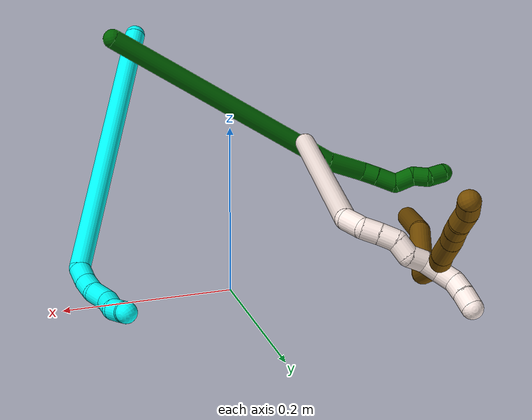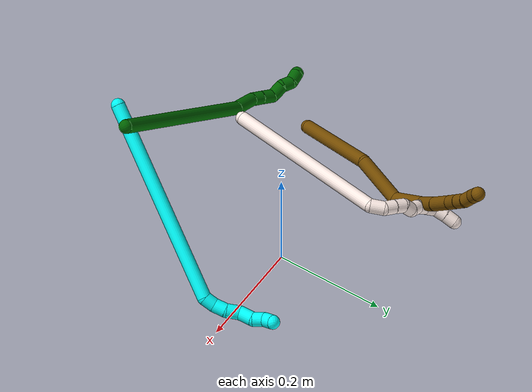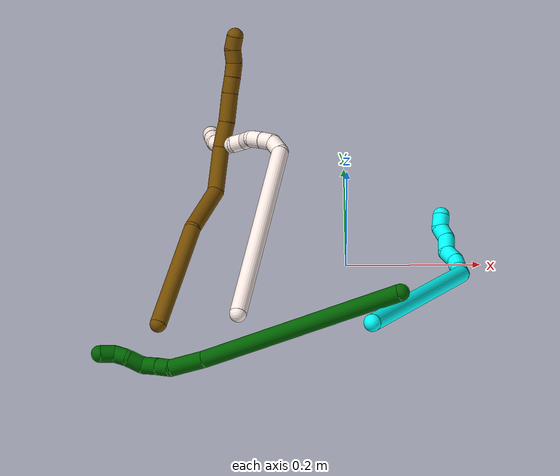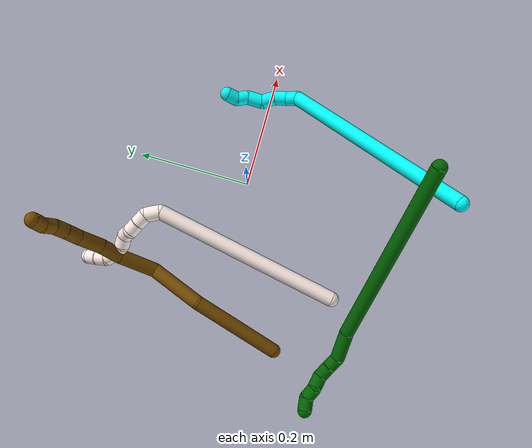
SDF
<sdf version="1.7">
 <world name="default">
  <model name="3">
   <static>0</static>
   <link name="3">
    <collision name="collision-cylinder-e_1_1_4">
     <pose>-0.037067 0.100546 -0.147471 -2.54319 -0.204764 0.643037</pose>
     <geometry><cylinder><radius>0.0125</radius><length>0.364589</length></cylinder></geometry>
     <surface>
      <friction><ode><mu>1.16</mu><mu2>1.16</mu2><slip1>0</slip1><slip2>0</slip2></ode></friction>
      <contact><ode><kp>1e+06</kp><kd>1</kd><max_vel>0</max_vel><min_depth>0.001</min_depth></ode></contact>
     </surface>
    </collision>
    <visual name="visual-cylinder-e_1_1_4">
     <pose>-0.037067 0.100546 -0.147471 -2.54319 -0.204764 0.643037</pose>
     <geometry><cylinder><radius>0.0125</radius><length>0.364589</length></cylinder></geometry>
     <material><ambient>0.003922 1 0.996078 1</ambient></material>
    </visual>
    <collision name="collision-cylinder-e_2_4_5">
     <pose>-0.073236 0.210169 -0.300011 -2.07999 0.086195 -0.146669</pose>
     <geometry><cylinder><radius>0.0125</radius><length>0.020869</length></cylinder></geometry>
     <surface>
      <friction><ode><mu>1.16</mu><mu2>1.16</mu2><slip1>0</slip1><slip2>0</slip2></ode></friction>
      <contact><ode><kp>1e+06</kp><kd>1</kd><max_vel>0</max_vel><min_depth>0.001</min_depth></ode></contact>
     </surface>
    </collision>
    <visual name="visual-cylinder-e_2_4_5">
     <pose>-0.073236 0.210169 -0.300011 -2.07999 0.086195 -0.146669</pose>
     <geometry><cylinder><radius>0.0125</radius><length>0.020869</length></cylinder></geometry>
     <material><ambient>0.003922 1 0.996078 1</ambient></material>
    </visual>
    <collision name="collision-cylinder-e_3_5_6">
     <pose>-0.068043 0.228013 -0.310709 -2.14169 0.390923 -0.695464</pose>
     <geometry><cylinder><radius>0.0125</radius><length>0.022539</length></cylinder></geometry>
     <surface>
      <friction><ode><mu>1.16</mu><mu2>1.16</mu2><slip1>0</slip1><slip2>0</slip2></ode></friction>
      <contact><ode><kp>1e+06</kp><kd>1</kd><max_vel>0</max_vel><min_depth>0.001</min_depth></ode></contact>
     </surface>
    </collision>
    <visual name="visual-cylinder-e_3_5_6">
     <pose>-0.068043 0.228013 -0.310709 -2.14169 0.390923 -0.695464</pose>
     <geometry><cylinder><radius>0.0125</radius><length>0.022539</length></cylinder></geometry>
     <material><ambient>0.003922 1 0.996078 1</ambient></material>
    </visual>
    <collision name="collision-cylinder-e_4_6_7">
     <pose>-0.058561 0.247647 -0.318431 -1.76094 0.438415 -0.526971</pose>
     <geometry><cylinder><radius>0.0125</radius><length>0.024445</length></cylinder></geometry>
     <surface>
      <friction><ode><mu>1.16</mu><mu2>1.16</mu2><slip1>0</slip1><slip2>0</slip2></ode></friction>
      <contact><ode><kp>1e+06</kp><kd>1</kd><max_vel>0</max_vel><min_depth>0.001</min_depth></ode></contact>
     </surface>
    </collision>
    <visual name="visual-cylinder-e_4_6_7">
     <pose>-0.058561 0.247647 -0.318431 -1.76094 0.438415 -0.526971</pose>
     <geometry><cylinder><radius>0.0125</radius><length>0.024445</length></cylinder></geometry>
     <material><ambient>0.003922 1 0.996078 1</ambient></material>
    </visual>
    <collision name="collision-cylinder-e_5_7_8">
     <pose>-0.046172 0.266163 -0.329244 -2.42162 0.555519 -1.29662</pose>
     <geometry><cylinder><radius>0.0125</radius><length>0.027306</length></cylinder></geometry>
     <surface>
      <friction><ode><mu>1.16</mu><mu2>1.16</mu2><slip1>0</slip1><slip2>0</slip2></ode></friction>
      <contact><ode><kp>1e+06</kp><kd>1</kd><max_vel>0</max_vel><min_depth>0.001</min_depth></ode></contact>
     </surface>
    </collision>
    <visual name="visual-cylinder-e_5_7_8">
     <pose>-0.046172 0.266163 -0.329244 -2.42162 0.555519 -1.29662</pose>
     <geometry><cylinder><radius>0.0125</radius><length>0.027306</length></cylinder></geometry>
     <material><ambient>0.003922 1 0.996078 1</ambient></material>
    </visual>
    <collision name="collision-cylinder-e_6_8_9">
     <pose>-0.032066 0.280844 -0.340189 -1.87706 0.75246 -0.989101</pose>
     <geometry><cylinder><radius>0.0125</radius><length>0.020208</length></cylinder></geometry>
     <surface>
      <friction><ode><mu>1.16</mu><mu2>1.16</mu2><slip1>0</slip1><slip2>0</slip2></ode></friction>
      <contact><ode><kp>1e+06</kp><kd>1</kd><max_vel>0</max_vel><min_depth>0.001</min_depth></ode></contact>
     </surface>
    </collision>
    <visual name="visual-cylinder-e_6_8_9">
     <pose>-0.032066 0.280844 -0.340189 -1.87706 0.75246 -0.989101</pose>
     <geometry><cylinder><radius>0.0125</radius><length>0.020208</length></cylinder></geometry>
     <material><ambient>0.003922 1 0.996078 1</ambient></material>
    </visual>
    <collision name="collision-cylinder-e_7_9_2">
     <pose>-0.017849 0.290518 -0.348737 -2.74594 0.817721 -2.27497</pose>
     <geometry><cylinder><radius>0.0125</radius><length>0.020043</length></cylinder></geometry>
     <surface>
      <friction><ode><mu>1.16</mu><mu2>1.16</mu2><slip1>0</slip1><slip2>0</slip2></ode></friction>
      <contact><ode><kp>1e+06</kp><kd>1</kd><max_vel>0</max_vel><min_depth>0.001</min_depth></ode></contact>
     </surface>
    </collision>
    <visual name="visual-cylinder-e_7_9_2">
     <pose>-0.017849 0.290518 -0.348737 -2.74594 0.817721 -2.27497</pose>
     <geometry><cylinder><radius>0.0125</radius><length>0.020043</length></cylinder></geometry>
     <material><ambient>0.003922 1 0.996078 1</ambient></material>
    </visual>
    <collision name="collision-sphere-2">
     <pose>-0.010537 0.29316 -0.355061 0 -0 0</pose>
     <geometry><sphere><radius>0.0125</radius></sphere></geometry>
     <surface>
      <friction><ode><mu>1.16</mu><mu2>1.16</mu2><slip1>0</slip1><slip2>0</slip2></ode></friction>
      <contact><ode><kp>1e+06</kp><kd>1</kd><max_vel>0</max_vel><min_depth>0.001</min_depth></ode></contact>
     </surface>
    </collision>
    <visual name="visual-sphere-2">
     <pose>-0.010537 0.29316 -0.355061 0 -0 0</pose>
     <geometry><sphere><radius>0.0125</radius></sphere></geometry>
     <material><ambient>0.003922 1 0.996078 1</ambient></material>
    </visual>
    <collision name="collision-sphere-9">
     <pose>-0.02516 0.287877 -0.342413 0 -0 0</pose>
     <geometry><sphere><radius>0.0125</radius></sphere></geometry>
     <surface>
      <friction><ode><mu>1.16</mu><mu2>1.16</mu2><slip1>0</slip1><slip2>0</slip2></ode></friction>
      <contact><ode><kp>1e+06</kp><kd>1</kd><max_vel>0</max_vel><min_depth>0.001</min_depth></ode></contact>
     </surface>
    </collision>
    <visual name="visual-sphere-9">
     <pose>-0.02516 0.287877 -0.342413 0 -0 0</pose>
     <geometry><sphere><radius>0.0125</radius></sphere></geometry>
     <material><ambient>0.003922 1 0.996078 1</ambient></material>
    </visual>
    <collision name="collision-sphere-4">
     <pose>-0.074134 0.201092 -0.294943 0 -0 0</pose>
     <geometry><sphere><radius>0.0125</radius></sphere></geometry>
     <surface>
      <friction><ode><mu>1.16</mu><mu2>1.16</mu2><slip1>0</slip1><slip2>0</slip2></ode></friction>
      <contact><ode><kp>1e+06</kp><kd>1</kd><max_vel>0</max_vel><min_depth>0.001</min_depth></ode></contact>
     </surface>
    </collision>
    <visual name="visual-sphere-4">
     <pose>-0.074134 0.201092 -0.294943 0 -0 0</pose>
     <geometry><sphere><radius>0.0125</radius></sphere></geometry>
     <material><ambient>0.003922 1 0.996078 1</ambient></material>
    </visual>
    <collision name="collision-sphere-1">
     <geometry><sphere><radius>0.0125</radius></sphere></geometry>
     <surface>
      <friction><ode><mu>1.16</mu><mu2>1.16</mu2><slip1>0</slip1><slip2>0</slip2></ode></friction>
      <contact><ode><kp>1e+06</kp><kd>1</kd><max_vel>0</max_vel><min_depth>0.001</min_depth></ode></contact>
     </surface>
    </collision>
    <visual name="visual-sphere-1">
     <geometry><sphere><radius>0.0125</radius></sphere></geometry>
     <material><ambient>0.003922 1 0.996078 1</ambient></material>
    </visual>
    <collision name="collision-sphere-8">
     <pose>-0.038971 0.273811 -0.337965 0 -0 0</pose>
     <geometry><sphere><radius>0.0125</radius></sphere></geometry>
     <surface>
      <friction><ode><mu>1.16</mu><mu2>1.16</mu2><slip1>0</slip1><slip2>0</slip2></ode></friction>
      <contact><ode><kp>1e+06</kp><kd>1</kd><max_vel>0</max_vel><min_depth>0.001</min_depth></ode></contact>
     </surface>
    </collision>
    <visual name="visual-sphere-8">
     <pose>-0.038971 0.273811 -0.337965 0 -0 0</pose>
     <geometry><sphere><radius>0.0125</radius></sphere></geometry>
     <material><ambient>0.003922 1 0.996078 1</ambient></material>
    </visual>
    <collision name="collision-sphere-5">
     <pose>-0.072338 0.219246 -0.305079 0 -0 0</pose>
     <geometry><sphere><radius>0.0125</radius></sphere></geometry>
     <surface>
      <friction><ode><mu>1.16</mu><mu2>1.16</mu2><slip1>0</slip1><slip2>0</slip2></ode></friction>
      <contact><ode><kp>1e+06</kp><kd>1</kd><max_vel>0</max_vel><min_depth>0.001</min_depth></ode></contact>
     </surface>
    </collision>
    <visual name="visual-sphere-5">
     <pose>-0.072338 0.219246 -0.305079 0 -0 0</pose>
     <geometry><sphere><radius>0.0125</radius></sphere></geometry>
     <material><ambient>0.003922 1 0.996078 1</ambient></material>
    </visual>
    <collision name="collision-sphere-6">
     <pose>-0.063749 0.23678 -0.316339 0 -0 0</pose>
     <geometry><sphere><radius>0.0125</radius></sphere></geometry>
     <surface>
      <friction><ode><mu>1.16</mu><mu2>1.16</mu2><slip1>0</slip1><slip2>0</slip2></ode></friction>
      <contact><ode><kp>1e+06</kp><kd>1</kd><max_vel>0</max_vel><min_depth>0.001</min_depth></ode></contact>
     </surface>
    </collision>
    <visual name="visual-sphere-6">
     <pose>-0.063749 0.23678 -0.316339 0 -0 0</pose>
     <geometry><sphere><radius>0.0125</radius></sphere></geometry>
     <material><ambient>0.003922 1 0.996078 1</ambient></material>
    </visual>
    <collision name="collision-sphere-7">
     <pose>-0.053372 0.258514 -0.320523 0 -0 0</pose>
     <geometry><sphere><radius>0.0125</radius></sphere></geometry>
     <surface>
      <friction><ode><mu>1.16</mu><mu2>1.16</mu2><slip1>0</slip1><slip2>0</slip2></ode></friction>
      <contact><ode><kp>1e+06</kp><kd>1</kd><max_vel>0</max_vel><min_depth>0.001</min_depth></ode></contact>
     </surface>
    </collision>
    <visual name="visual-sphere-7">
     <pose>-0.053372 0.258514 -0.320523 0 -0 0</pose>
     <geometry><sphere><radius>0.0125</radius></sphere></geometry>
     <material><ambient>0.003922 1 0.996078 1</ambient></material>
    </visual>
    <inertial>
     <pose>-0.040549 0.142006 -0.195339 0 -0 0</pose>
     <mass>0.5</mass>
     <inertia>
      <ixx>0.005553</ixx>
      <ixy>0</ixy>
      <ixz>0</ixz>
      <iyy>-4e-06</iyy>
      <iyz>0</iyz>
      <izz>-0.001452</izz>
     </inertia>
    </inertial>
   </link>
   <pose>0.030467 -0.319119 0.228035 -1.44238 -0.953936 2.15708</pose>
  </model>
  <model name="6">
   <static>0</static>
   <link name="6">
    <collision name="collision-cylinder-e_1_1_4">
     <pose>-0.145665 -0.007945 -0.080229 3.04288 -1.06529 -2.97439</pose>
     <geometry><cylinder><radius>0.0125</radius><length>0.332975</length></cylinder></geometry>
     <surface>
      <friction><ode><mu>1.16</mu><mu2>1.16</mu2><slip1>0</slip1><slip2>0</slip2></ode></friction>
      <contact><ode><kp>1e+06</kp><kd>1</kd><max_vel>0</max_vel><min_depth>0.001</min_depth></ode></contact>
     </surface>
    </collision>
    <visual name="visual-cylinder-e_1_1_4">
     <pose>-0.145665 -0.007945 -0.080229 3.04288 -1.06529 -2.97439</pose>
     <geometry><cylinder><radius>0.0125</radius><length>0.332975</length></cylinder></geometry>
     <material><ambient>0 0.392157 0.003922 1</ambient></material>
    </visual>
    <collision name="collision-cylinder-e_2_4_5">
     <pose>-0.312718 -0.012064 -0.174908 -2.88273 -0.960826 2.65209</pose>
     <geometry><cylinder><radius>0.0125</radius><length>0.052187</length></cylinder></geometry>
     <surface>
      <friction><ode><mu>1.16</mu><mu2>1.16</mu2><slip1>0</slip1><slip2>0</slip2></ode></friction>
      <contact><ode><kp>1e+06</kp><kd>1</kd><max_vel>0</max_vel><min_depth>0.001</min_depth></ode></contact>
     </surface>
    </collision>
    <visual name="visual-cylinder-e_2_4_5">
     <pose>-0.312718 -0.012064 -0.174908 -2.88273 -0.960826 2.65209</pose>
     <geometry><cylinder><radius>0.0125</radius><length>0.052187</length></cylinder></geometry>
     <material><ambient>0 0.392157 0.003922 1</ambient></material>
    </visual>
    <collision name="collision-cylinder-e_3_5_6">
     <pose>-0.340738 -0.009816 -0.19741 2.94811 -0.679728 -2.60587</pose>
     <geometry><cylinder><radius>0.0125</radius><length>0.021101</length></cylinder></geometry>
     <surface>
      <friction><ode><mu>1.16</mu><mu2>1.16</mu2><slip1>0</slip1><slip2>0</slip2></ode></friction>
      <contact><ode><kp>1e+06</kp><kd>1</kd><max_vel>0</max_vel><min_depth>0.001</min_depth></ode></contact>
     </surface>
    </collision>
    <visual name="visual-cylinder-e_3_5_6">
     <pose>-0.340738 -0.009816 -0.19741 2.94811 -0.679728 -2.60587</pose>
     <geometry><cylinder><radius>0.0125</radius><length>0.021101</length></cylinder></geometry>
     <material><ambient>0 0.392157 0.003922 1</ambient></material>
    </visual>
    <collision name="collision-cylinder-e_4_6_7">
     <pose>-0.356002 -0.013328 -0.215024 2.94203 -0.724353 -2.62493</pose>
     <geometry><cylinder><radius>0.0125</radius><length>0.026052</length></cylinder></geometry>
     <surface>
      <friction><ode><mu>1.16</mu><mu2>1.16</mu2><slip1>0</slip1><slip2>0</slip2></ode></friction>
      <contact><ode><kp>1e+06</kp><kd>1</kd><max_vel>0</max_vel><min_depth>0.001</min_depth></ode></contact>
     </surface>
    </collision>
    <visual name="visual-cylinder-e_4_6_7">
     <pose>-0.356002 -0.013328 -0.215024 2.94203 -0.724353 -2.62493</pose>
     <geometry><cylinder><radius>0.0125</radius><length>0.026052</length></cylinder></geometry>
     <material><ambient>0 0.392157 0.003922 1</ambient></material>
    </visual>
    <collision name="collision-cylinder-e_5_7_8">
     <pose>-0.366425 -0.010702 -0.236218 -2.768 -0.142473 0.722016</pose>
     <geometry><cylinder><radius>0.0125</radius><length>0.025244</length></cylinder></geometry>
     <surface>
      <friction><ode><mu>1.16</mu><mu2>1.16</mu2><slip1>0</slip1><slip2>0</slip2></ode></friction>
      <contact><ode><kp>1e+06</kp><kd>1</kd><max_vel>0</max_vel><min_depth>0.001</min_depth></ode></contact>
     </surface>
    </collision>
    <visual name="visual-cylinder-e_5_7_8">
     <pose>-0.366425 -0.010702 -0.236218 -2.768 -0.142473 0.722016</pose>
     <geometry><cylinder><radius>0.0125</radius><length>0.025244</length></cylinder></geometry>
     <material><ambient>0 0.392157 0.003922 1</ambient></material>
    </visual>
    <collision name="collision-cylinder-e_6_8_9">
     <pose>-0.372872 -0.006273 -0.256858 3.12705 -0.476942 -3.08179</pose>
     <geometry><cylinder><radius>0.0125</radius><length>0.02028</length></cylinder></geometry>
     <surface>
      <friction><ode><mu>1.16</mu><mu2>1.16</mu2><slip1>0</slip1><slip2>0</slip2></ode></friction>
      <contact><ode><kp>1e+06</kp><kd>1</kd><max_vel>0</max_vel><min_depth>0.001</min_depth></ode></contact>
     </surface>
    </collision>
    <visual name="visual-cylinder-e_6_8_9">
     <pose>-0.372872 -0.006273 -0.256858 3.12705 -0.476942 -3.08179</pose>
     <geometry><cylinder><radius>0.0125</radius><length>0.02028</length></cylinder></geometry>
     <material><ambient>0 0.392157 0.003922 1</ambient></material>
    </visual>
    <collision name="collision-cylinder-e_7_9_2">
     <pose>-0.382918 -0.000613 -0.273623 -2.50039 -0.508046 1.32721</pose>
     <geometry><cylinder><radius>0.0125</radius><length>0.022161</length></cylinder></geometry>
     <surface>
      <friction><ode><mu>1.16</mu><mu2>1.16</mu2><slip1>0</slip1><slip2>0</slip2></ode></friction>
      <contact><ode><kp>1e+06</kp><kd>1</kd><max_vel>0</max_vel><min_depth>0.001</min_depth></ode></contact>
     </surface>
    </collision>
    <visual name="visual-cylinder-e_7_9_2">
     <pose>-0.382918 -0.000613 -0.273623 -2.50039 -0.508046 1.32721</pose>
     <geometry><cylinder><radius>0.0125</radius><length>0.022161</length></cylinder></geometry>
     <material><ambient>0 0.392157 0.003922 1</ambient></material>
    </visual>
    <collision name="collision-sphere-2">
     <pose>-0.388308 0.005178 -0.281381 0 -0 0</pose>
     <geometry><sphere><radius>0.0125</radius></sphere></geometry>
     <surface>
      <friction><ode><mu>1.16</mu><mu2>1.16</mu2><slip1>0</slip1><slip2>0</slip2></ode></friction>
      <contact><ode><kp>1e+06</kp><kd>1</kd><max_vel>0</max_vel><min_depth>0.001</min_depth></ode></contact>
     </surface>
    </collision>
    <visual name="visual-sphere-2">
     <pose>-0.388308 0.005178 -0.281381 0 -0 0</pose>
     <geometry><sphere><radius>0.0125</radius></sphere></geometry>
     <material><ambient>0 0.392157 0.003922 1</ambient></material>
    </visual>
    <collision name="collision-sphere-9">
     <pose>-0.377527 -0.006404 -0.265865 0 -0 0</pose>
     <geometry><sphere><radius>0.0125</radius></sphere></geometry>
     <surface>
      <friction><ode><mu>1.16</mu><mu2>1.16</mu2><slip1>0</slip1><slip2>0</slip2></ode></friction>
      <contact><ode><kp>1e+06</kp><kd>1</kd><max_vel>0</max_vel><min_depth>0.001</min_depth></ode></contact>
     </surface>
    </collision>
    <visual name="visual-sphere-9">
     <pose>-0.377527 -0.006404 -0.265865 0 -0 0</pose>
     <geometry><sphere><radius>0.0125</radius></sphere></geometry>
     <material><ambient>0 0.392157 0.003922 1</ambient></material>
    </visual>
    <collision name="collision-sphere-4">
     <pose>-0.29133 -0.015891 -0.160458 0 -0 0</pose>
     <geometry><sphere><radius>0.0125</radius></sphere></geometry>
     <surface>
      <friction><ode><mu>1.16</mu><mu2>1.16</mu2><slip1>0</slip1><slip2>0</slip2></ode></friction>
      <contact><ode><kp>1e+06</kp><kd>1</kd><max_vel>0</max_vel><min_depth>0.001</min_depth></ode></contact>
     </surface>
    </collision>
    <visual name="visual-sphere-4">
     <pose>-0.29133 -0.015891 -0.160458 0 -0 0</pose>
     <geometry><sphere><radius>0.0125</radius></sphere></geometry>
     <material><ambient>0 0.392157 0.003922 1</ambient></material>
    </visual>
    <collision name="collision-sphere-1">
     <geometry><sphere><radius>0.0125</radius></sphere></geometry>
     <surface>
      <friction><ode><mu>1.16</mu><mu2>1.16</mu2><slip1>0</slip1><slip2>0</slip2></ode></friction>
      <contact><ode><kp>1e+06</kp><kd>1</kd><max_vel>0</max_vel><min_depth>0.001</min_depth></ode></contact>
     </surface>
    </collision>
    <visual name="visual-sphere-1">
     <geometry><sphere><radius>0.0125</radius></sphere></geometry>
     <material><ambient>0 0.392157 0.003922 1</ambient></material>
    </visual>
    <collision name="collision-sphere-8">
     <pose>-0.368218 -0.006142 -0.247851 0 -0 0</pose>
     <geometry><sphere><radius>0.0125</radius></sphere></geometry>
     <surface>
      <friction><ode><mu>1.16</mu><mu2>1.16</mu2><slip1>0</slip1><slip2>0</slip2></ode></friction>
      <contact><ode><kp>1e+06</kp><kd>1</kd><max_vel>0</max_vel><min_depth>0.001</min_depth></ode></contact>
     </surface>
    </collision>
    <visual name="visual-sphere-8">
     <pose>-0.368218 -0.006142 -0.247851 0 -0 0</pose>
     <geometry><sphere><radius>0.0125</radius></sphere></geometry>
     <material><ambient>0 0.392157 0.003922 1</ambient></material>
    </visual>
    <collision name="collision-sphere-5">
     <pose>-0.334106 -0.008238 -0.189357 0 -0 0</pose>
     <geometry><sphere><radius>0.0125</radius></sphere></geometry>
     <surface>
      <friction><ode><mu>1.16</mu><mu2>1.16</mu2><slip1>0</slip1><slip2>0</slip2></ode></friction>
      <contact><ode><kp>1e+06</kp><kd>1</kd><max_vel>0</max_vel><min_depth>0.001</min_depth></ode></contact>
     </surface>
    </collision>
    <visual name="visual-sphere-5">
     <pose>-0.334106 -0.008238 -0.189357 0 -0 0</pose>
     <geometry><sphere><radius>0.0125</radius></sphere></geometry>
     <material><ambient>0 0.392157 0.003922 1</ambient></material>
    </visual>
    <collision name="collision-sphere-6">
     <pose>-0.34737 -0.011394 -0.205462 0 -0 0</pose>
     <geometry><sphere><radius>0.0125</radius></sphere></geometry>
     <surface>
      <friction><ode><mu>1.16</mu><mu2>1.16</mu2><slip1>0</slip1><slip2>0</slip2></ode></friction>
      <contact><ode><kp>1e+06</kp><kd>1</kd><max_vel>0</max_vel><min_depth>0.001</min_depth></ode></contact>
     </surface>
    </collision>
    <visual name="visual-sphere-6">
     <pose>-0.34737 -0.011394 -0.205462 0 -0 0</pose>
     <geometry><sphere><radius>0.0125</radius></sphere></geometry>
     <material><ambient>0 0.392157 0.003922 1</ambient></material>
    </visual>
    <collision name="collision-sphere-7">
     <pose>-0.364633 -0.015262 -0.224586 0 -0 0</pose>
     <geometry><sphere><radius>0.0125</radius></sphere></geometry>
     <surface>
      <friction><ode><mu>1.16</mu><mu2>1.16</mu2><slip1>0</slip1><slip2>0</slip2></ode></friction>
      <contact><ode><kp>1e+06</kp><kd>1</kd><max_vel>0</max_vel><min_depth>0.001</min_depth></ode></contact>
     </surface>
    </collision>
    <visual name="visual-sphere-7">
     <pose>-0.364633 -0.015262 -0.224586 0 -0 0</pose>
     <geometry><sphere><radius>0.0125</radius></sphere></geometry>
     <material><ambient>0 0.392157 0.003922 1</ambient></material>
    </visual>
    <inertial>
     <pose>-0.21317 -0.008481 -0.125691 0 -0 0</pose>
     <mass>0.5</mass>
     <inertia>
      <ixx>-0.001758</ixx>
      <ixy>0</ixy>
      <ixz>0</ixz>
      <iyy>0.00285</iyy>
      <iyz>0</iyz>
      <izz>0.002841</izz>
     </inertia>
    </inertial>
   </link>
   <pose>0.070558 -0.272562 0.238753 2.17801 -0.902271 0.396112</pose>
  </model>
  <model name="11">
   <static>0</static>
   <link name="11">
    <collision name="collision-cylinder-e_1_1_4">
     <pose>-0.009011 0.035799 0.152569 -0.230475 -0.057437 0.00665</pose>
     <geometry><cylinder><radius>0.0125</radius><length>0.313942</length></cylinder></geometry>
     <surface>
      <friction><ode><mu>1.16</mu><mu2>1.16</mu2><slip1>0</slip1><slip2>0</slip2></ode></friction>
      <contact><ode><kp>1e+06</kp><kd>1</kd><max_vel>0</max_vel><min_depth>0.001</min_depth></ode></contact>
     </surface>
    </collision>
    <visual name="visual-cylinder-e_1_1_4">
     <pose>-0.009011 0.035799 0.152569 -0.230475 -0.057437 0.00665</pose>
     <geometry><cylinder><radius>0.0125</radius><length>0.313942</length></cylinder></geometry>
     <material><ambient>1 0.933333 0.909804 1</ambient></material>
    </visual>
    <collision name="collision-cylinder-e_2_4_5">
     <pose>-0.02657 0.073567 0.314512 -0.20698 -0.728551 0.079161</pose>
     <geometry><cylinder><radius>0.0125</radius><length>0.025677</length></cylinder></geometry>
     <surface>
      <friction><ode><mu>1.16</mu><mu2>1.16</mu2><slip1>0</slip1><slip2>0</slip2></ode></friction>
      <contact><ode><kp>1e+06</kp><kd>1</kd><max_vel>0</max_vel><min_depth>0.001</min_depth></ode></contact>
     </surface>
    </collision>
    <visual name="visual-cylinder-e_2_4_5">
     <pose>-0.02657 0.073567 0.314512 -0.20698 -0.728551 0.079161</pose>
     <geometry><cylinder><radius>0.0125</radius><length>0.025677</length></cylinder></geometry>
     <material><ambient>1 0.933333 0.909804 1</ambient></material>
    </visual>
    <collision name="collision-cylinder-e_3_5_6">
     <pose>-0.044824 0.076012 0.326358 -0.190433 -1.3171 0.147534</pose>
     <geometry><cylinder><radius>0.0125</radius><length>0.020054</length></cylinder></geometry>
     <surface>
      <friction><ode><mu>1.16</mu><mu2>1.16</mu2><slip1>0</slip1><slip2>0</slip2></ode></friction>
      <contact><ode><kp>1e+06</kp><kd>1</kd><max_vel>0</max_vel><min_depth>0.001</min_depth></ode></contact>
     </surface>
    </collision>
    <visual name="visual-cylinder-e_3_5_6">
     <pose>-0.044824 0.076012 0.326358 -0.190433 -1.3171 0.147534</pose>
     <geometry><cylinder><radius>0.0125</radius><length>0.020054</length></cylinder></geometry>
     <material><ambient>1 0.933333 0.909804 1</ambient></material>
    </visual>
    <collision name="collision-cylinder-e_4_6_7">
     <pose>-0.064262 0.077583 0.330975 -0.471842 -1.32818 0.371961</pose>
     <geometry><cylinder><radius>0.0125</radius><length>0.020051</length></cylinder></geometry>
     <surface>
      <friction><ode><mu>1.16</mu><mu2>1.16</mu2><slip1>0</slip1><slip2>0</slip2></ode></friction>
      <contact><ode><kp>1e+06</kp><kd>1</kd><max_vel>0</max_vel><min_depth>0.001</min_depth></ode></contact>
     </surface>
    </collision>
    <visual name="visual-cylinder-e_4_6_7">
     <pose>-0.064262 0.077583 0.330975 -0.471842 -1.32818 0.371961</pose>
     <geometry><cylinder><radius>0.0125</radius><length>0.020051</length></cylinder></geometry>
     <material><ambient>1 0.933333 0.909804 1</ambient></material>
    </visual>
    <collision name="collision-cylinder-e_5_7_8">
     <pose>-0.081882 0.084795 0.334635 -1.32806 -0.89677 0.720123</pose>
     <geometry><cylinder><radius>0.0125</radius><length>0.020192</length></cylinder></geometry>
     <surface>
      <friction><ode><mu>1.16</mu><mu2>1.16</mu2><slip1>0</slip1><slip2>0</slip2></ode></friction>
      <contact><ode><kp>1e+06</kp><kd>1</kd><max_vel>0</max_vel><min_depth>0.001</min_depth></ode></contact>
     </surface>
    </collision>
    <visual name="visual-cylinder-e_5_7_8">
     <pose>-0.081882 0.084795 0.334635 -1.32806 -0.89677 0.720123</pose>
     <geometry><cylinder><radius>0.0125</radius><length>0.020192</length></cylinder></geometry>
     <material><ambient>1 0.933333 0.909804 1</ambient></material>
    </visual>
    <collision name="collision-cylinder-e_6_8_9">
     <pose>-0.099528 0.091663 0.334091 -2.79141 -1.34994 2.70654</pose>
     <geometry><cylinder><radius>0.0125</radius><length>0.020002</length></cylinder></geometry>
     <surface>
      <friction><ode><mu>1.16</mu><mu2>1.16</mu2><slip1>0</slip1><slip2>0</slip2></ode></friction>
      <contact><ode><kp>1e+06</kp><kd>1</kd><max_vel>0</max_vel><min_depth>0.001</min_depth></ode></contact>
     </surface>
    </collision>
    <visual name="visual-cylinder-e_6_8_9">
     <pose>-0.099528 0.091663 0.334091 -2.79141 -1.34994 2.70654</pose>
     <geometry><cylinder><radius>0.0125</radius><length>0.020002</length></cylinder></geometry>
     <material><ambient>1 0.933333 0.909804 1</ambient></material>
    </visual>
    <collision name="collision-cylinder-e_7_9_10">
     <pose>-0.118804 0.095421 0.333003 -1.25869 -1.25032 0.967675</pose>
     <geometry><cylinder><radius>0.0125</radius><length>0.020057</length></cylinder></geometry>
     <surface>
      <friction><ode><mu>1.16</mu><mu2>1.16</mu2><slip1>0</slip1><slip2>0</slip2></ode></friction>
      <contact><ode><kp>1e+06</kp><kd>1</kd><max_vel>0</max_vel><min_depth>0.001</min_depth></ode></contact>
     </surface>
    </collision>
    <visual name="visual-cylinder-e_7_9_10">
     <pose>-0.118804 0.095421 0.333003 -1.25869 -1.25032 0.967675</pose>
     <geometry><cylinder><radius>0.0125</radius><length>0.020057</length></cylinder></geometry>
     <material><ambient>1 0.933333 0.909804 1</ambient></material>
    </visual>
    <collision name="collision-cylinder-e_8_10_11">
     <pose>-0.136885 0.10123 0.338323 -0.572372 -1.02722 0.328993</pose>
     <geometry><cylinder><radius>0.0125</radius><length>0.02001</length></cylinder></geometry>
     <surface>
      <friction><ode><mu>1.16</mu><mu2>1.16</mu2><slip1>0</slip1><slip2>0</slip2></ode></friction>
      <contact><ode><kp>1e+06</kp><kd>1</kd><max_vel>0</max_vel><min_depth>0.001</min_depth></ode></contact>
     </surface>
    </collision>
    <visual name="visual-cylinder-e_8_10_11">
     <pose>-0.136885 0.10123 0.338323 -0.572372 -1.02722 0.328993</pose>
     <geometry><cylinder><radius>0.0125</radius><length>0.02001</length></cylinder></geometry>
     <material><ambient>1 0.933333 0.909804 1</ambient></material>
    </visual>
    <collision name="collision-cylinder-e_9_11_12">
     <pose>-0.150559 0.109 0.349692 -0.615937 -0.536288 0.174354</pose>
     <geometry><cylinder><radius>0.0125</radius><length>0.020006</length></cylinder></geometry>
     <surface>
      <friction><ode><mu>1.16</mu><mu2>1.16</mu2><slip1>0</slip1><slip2>0</slip2></ode></friction>
      <contact><ode><kp>1e+06</kp><kd>1</kd><max_vel>0</max_vel><min_depth>0.001</min_depth></ode></contact>
     </surface>
    </collision>
    <visual name="visual-cylinder-e_9_11_12">
     <pose>-0.150559 0.109 0.349692 -0.615937 -0.536288 0.174354</pose>
     <geometry><cylinder><radius>0.0125</radius><length>0.020006</length></cylinder></geometry>
     <material><ambient>1 0.933333 0.909804 1</ambient></material>
    </visual>
    <collision name="collision-cylinder-e_10_12_2">
     <pose>-0.160562 0.119699 0.36329 -0.716526 -0.510991 0.19498</pose>
     <geometry><cylinder><radius>0.0125</radius><length>0.020009</length></cylinder></geometry>
     <surface>
      <friction><ode><mu>1.16</mu><mu2>1.16</mu2><slip1>0</slip1><slip2>0</slip2></ode></friction>
      <contact><ode><kp>1e+06</kp><kd>1</kd><max_vel>0</max_vel><min_depth>0.001</min_depth></ode></contact>
     </surface>
    </collision>
    <visual name="visual-cylinder-e_10_12_2">
     <pose>-0.160562 0.119699 0.36329 -0.716526 -0.510991 0.19498</pose>
     <geometry><cylinder><radius>0.0125</radius><length>0.020009</length></cylinder></geometry>
     <material><ambient>1 0.933333 0.909804 1</ambient></material>
    </visual>
    <collision name="collision-sphere-2">
     <pose>-0.165455 0.12543 0.369871 0 -0 0</pose>
     <geometry><sphere><radius>0.0125</radius></sphere></geometry>
     <surface>
      <friction><ode><mu>1.16</mu><mu2>1.16</mu2><slip1>0</slip1><slip2>0</slip2></ode></friction>
      <contact><ode><kp>1e+06</kp><kd>1</kd><max_vel>0</max_vel><min_depth>0.001</min_depth></ode></contact>
     </surface>
    </collision>
    <visual name="visual-sphere-2">
     <pose>-0.165455 0.12543 0.369871 0 -0 0</pose>
     <geometry><sphere><radius>0.0125</radius></sphere></geometry>
     <material><ambient>1 0.933333 0.909804 1</ambient></material>
    </visual>
    <collision name="collision-sphere-12">
     <pose>-0.15567 0.113968 0.35671 0 -0 0</pose>
     <geometry><sphere><radius>0.0125</radius></sphere></geometry>
     <surface>
      <friction><ode><mu>1.16</mu><mu2>1.16</mu2><slip1>0</slip1><slip2>0</slip2></ode></friction>
      <contact><ode><kp>1e+06</kp><kd>1</kd><max_vel>0</max_vel><min_depth>0.001</min_depth></ode></contact>
     </surface>
    </collision>
    <visual name="visual-sphere-12">
     <pose>-0.15567 0.113968 0.35671 0 -0 0</pose>
     <geometry><sphere><radius>0.0125</radius></sphere></geometry>
     <material><ambient>1 0.933333 0.909804 1</ambient></material>
    </visual>
    <collision name="collision-sphere-11">
     <pose>-0.145448 0.104033 0.342673 0 -0 0</pose>
     <geometry><sphere><radius>0.0125</radius></sphere></geometry>
     <surface>
      <friction><ode><mu>1.16</mu><mu2>1.16</mu2><slip1>0</slip1><slip2>0</slip2></ode></friction>
      <contact><ode><kp>1e+06</kp><kd>1</kd><max_vel>0</max_vel><min_depth>0.001</min_depth></ode></contact>
     </surface>
    </collision>
    <visual name="visual-sphere-11">
     <pose>-0.145448 0.104033 0.342673 0 -0 0</pose>
     <geometry><sphere><radius>0.0125</radius></sphere></geometry>
     <material><ambient>1 0.933333 0.909804 1</ambient></material>
    </visual>
    <collision name="collision-sphere-10">
     <pose>-0.128322 0.098427 0.333973 0 -0 0</pose>
     <geometry><sphere><radius>0.0125</radius></sphere></geometry>
     <surface>
      <friction><ode><mu>1.16</mu><mu2>1.16</mu2><slip1>0</slip1><slip2>0</slip2></ode></friction>
      <contact><ode><kp>1e+06</kp><kd>1</kd><max_vel>0</max_vel><min_depth>0.001</min_depth></ode></contact>
     </surface>
    </collision>
    <visual name="visual-sphere-10">
     <pose>-0.128322 0.098427 0.333973 0 -0 0</pose>
     <geometry><sphere><radius>0.0125</radius></sphere></geometry>
     <material><ambient>1 0.933333 0.909804 1</ambient></material>
    </visual>
    <collision name="collision-sphere-9">
     <pose>-0.109286 0.092414 0.332033 0 -0 0</pose>
     <geometry><sphere><radius>0.0125</radius></sphere></geometry>
     <surface>
      <friction><ode><mu>1.16</mu><mu2>1.16</mu2><slip1>0</slip1><slip2>0</slip2></ode></friction>
      <contact><ode><kp>1e+06</kp><kd>1</kd><max_vel>0</max_vel><min_depth>0.001</min_depth></ode></contact>
     </surface>
    </collision>
    <visual name="visual-sphere-9">
     <pose>-0.109286 0.092414 0.332033 0 -0 0</pose>
     <geometry><sphere><radius>0.0125</radius></sphere></geometry>
     <material><ambient>1 0.933333 0.909804 1</ambient></material>
    </visual>
    <collision name="collision-sphere-4">
     <pose>-0.018022 0.071599 0.305137 0 -0 0</pose>
     <geometry><sphere><radius>0.0125</radius></sphere></geometry>
     <surface>
      <friction><ode><mu>1.16</mu><mu2>1.16</mu2><slip1>0</slip1><slip2>0</slip2></ode></friction>
      <contact><ode><kp>1e+06</kp><kd>1</kd><max_vel>0</max_vel><min_depth>0.001</min_depth></ode></contact>
     </surface>
    </collision>
    <visual name="visual-sphere-4">
     <pose>-0.018022 0.071599 0.305137 0 -0 0</pose>
     <geometry><sphere><radius>0.0125</radius></sphere></geometry>
     <material><ambient>1 0.933333 0.909804 1</ambient></material>
    </visual>
    <collision name="collision-sphere-1">
     <geometry><sphere><radius>0.0125</radius></sphere></geometry>
     <surface>
      <friction><ode><mu>1.16</mu><mu2>1.16</mu2><slip1>0</slip1><slip2>0</slip2></ode></friction>
      <contact><ode><kp>1e+06</kp><kd>1</kd><max_vel>0</max_vel><min_depth>0.001</min_depth></ode></contact>
     </surface>
    </collision>
    <visual name="visual-sphere-1">
     <geometry><sphere><radius>0.0125</radius></sphere></geometry>
     <material><ambient>1 0.933333 0.909804 1</ambient></material>
    </visual>
    <collision name="collision-sphere-8">
     <pose>-0.08977 0.090911 0.336149 0 -0 0</pose>
     <geometry><sphere><radius>0.0125</radius></sphere></geometry>
     <surface>
      <friction><ode><mu>1.16</mu><mu2>1.16</mu2><slip1>0</slip1><slip2>0</slip2></ode></friction>
      <contact><ode><kp>1e+06</kp><kd>1</kd><max_vel>0</max_vel><min_depth>0.001</min_depth></ode></contact>
     </surface>
    </collision>
    <visual name="visual-sphere-8">
     <pose>-0.08977 0.090911 0.336149 0 -0 0</pose>
     <geometry><sphere><radius>0.0125</radius></sphere></geometry>
     <material><ambient>1 0.933333 0.909804 1</ambient></material>
    </visual>
    <collision name="collision-sphere-5">
     <pose>-0.035118 0.075536 0.323887 0 -0 0</pose>
     <geometry><sphere><radius>0.0125</radius></sphere></geometry>
     <surface>
      <friction><ode><mu>1.16</mu><mu2>1.16</mu2><slip1>0</slip1><slip2>0</slip2></ode></friction>
      <contact><ode><kp>1e+06</kp><kd>1</kd><max_vel>0</max_vel><min_depth>0.001</min_depth></ode></contact>
     </surface>
    </collision>
    <visual name="visual-sphere-5">
     <pose>-0.035118 0.075536 0.323887 0 -0 0</pose>
     <geometry><sphere><radius>0.0125</radius></sphere></geometry>
     <material><ambient>1 0.933333 0.909804 1</ambient></material>
    </visual>
    <collision name="collision-sphere-6">
     <pose>-0.05453 0.076489 0.328829 0 -0 0</pose>
     <geometry><sphere><radius>0.0125</radius></sphere></geometry>
     <surface>
      <friction><ode><mu>1.16</mu><mu2>1.16</mu2><slip1>0</slip1><slip2>0</slip2></ode></friction>
      <contact><ode><kp>1e+06</kp><kd>1</kd><max_vel>0</max_vel><min_depth>0.001</min_depth></ode></contact>
     </surface>
    </collision>
    <visual name="visual-sphere-6">
     <pose>-0.05453 0.076489 0.328829 0 -0 0</pose>
     <geometry><sphere><radius>0.0125</radius></sphere></geometry>
     <material><ambient>1 0.933333 0.909804 1</ambient></material>
    </visual>
    <collision name="collision-sphere-7">
     <pose>-0.073994 0.078678 0.33312 0 -0 0</pose>
     <geometry><sphere><radius>0.0125</radius></sphere></geometry>
     <surface>
      <friction><ode><mu>1.16</mu><mu2>1.16</mu2><slip1>0</slip1><slip2>0</slip2></ode></friction>
      <contact><ode><kp>1e+06</kp><kd>1</kd><max_vel>0</max_vel><min_depth>0.001</min_depth></ode></contact>
     </surface>
    </collision>
    <visual name="visual-sphere-7">
     <pose>-0.073994 0.078678 0.33312 0 -0 0</pose>
     <geometry><sphere><radius>0.0125</radius></sphere></geometry>
     <material><ambient>1 0.933333 0.909804 1</ambient></material>
    </visual>
    <inertial>
     <pose>-0.041379 0.056537 0.220616 0 -0 0</pose>
     <mass>0.5</mass>
     <inertia>
      <ixx>0.002599</ixx>
      <ixy>0</ixy>
      <ixz>0</ixz>
      <iyy>0.002564</iyy>
      <iyz>0</iyz>
      <izz>-0.000406</izz>
     </inertia>
    </inertial>
   </link>
   <pose>-0.15817 -0.188936 0.10405 -1.26091 -0.300261 -0.27559</pose>
  </model>
  <model name="12">
   <static>0</static>
   <link name="12">
    <collision name="collision-cylinder-e_1_1_4">
     <pose>0.068852 0.004979 0.04476 -0.110777 0.991548 -0.059955</pose>
     <geometry><cylinder><radius>0.0125</radius><length>0.164546</length></cylinder></geometry>
     <surface>
      <friction><ode><mu>1.16</mu><mu2>1.16</mu2><slip1>0</slip1><slip2>0</slip2></ode></friction>
      <contact><ode><kp>1e+06</kp><kd>1</kd><max_vel>0</max_vel><min_depth>0.001</min_depth></ode></contact>
     </surface>
    </collision>
    <visual name="visual-cylinder-e_1_1_4">
     <pose>0.068852 0.004979 0.04476 -0.110777 0.991548 -0.059955</pose>
     <geometry><cylinder><radius>0.0125</radius><length>0.164546</length></cylinder></geometry>
     <material><ambient>0.466667 0.301961 0 1</ambient></material>
    </visual>
    <collision name="collision-cylinder-e_2_4_5">
     <pose>0.179399 0.028638 0.103278 -0.935981 1.06303 -0.577729</pose>
     <geometry><cylinder><radius>0.0125</radius><length>0.095429</length></cylinder></geometry>
     <surface>
      <friction><ode><mu>1.16</mu><mu2>1.16</mu2><slip1>0</slip1><slip2>0</slip2></ode></friction>
      <contact><ode><kp>1e+06</kp><kd>1</kd><max_vel>0</max_vel><min_depth>0.001</min_depth></ode></contact>
     </surface>
    </collision>
    <visual name="visual-cylinder-e_2_4_5">
     <pose>0.179399 0.028638 0.103278 -0.935981 1.06303 -0.577729</pose>
     <geometry><cylinder><radius>0.0125</radius><length>0.095429</length></cylinder></geometry>
     <material><ambient>0.466667 0.301961 0 1</ambient></material>
    </visual>
    <collision name="collision-cylinder-e_3_5_6">
     <pose>0.244181 0.044485 0.142273 0.111795 0.737851 0.043262</pose>
     <geometry><cylinder><radius>0.0125</radius><length>0.068644</length></cylinder></geometry>
     <surface>
      <friction><ode><mu>1.16</mu><mu2>1.16</mu2><slip1>0</slip1><slip2>0</slip2></ode></friction>
      <contact><ode><kp>1e+06</kp><kd>1</kd><max_vel>0</max_vel><min_depth>0.001</min_depth></ode></contact>
     </surface>
    </collision>
    <visual name="visual-cylinder-e_3_5_6">
     <pose>0.244181 0.044485 0.142273 0.111795 0.737851 0.043262</pose>
     <geometry><cylinder><radius>0.0125</radius><length>0.068644</length></cylinder></geometry>
     <material><ambient>0.466667 0.301961 0 1</ambient></material>
    </visual>
    <collision name="collision-cylinder-e_4_6_7">
     <pose>0.280436 0.035415 0.181188 0.427766 0.719279 0.162973</pose>
     <geometry><cylinder><radius>0.0125</radius><length>0.039967</length></cylinder></geometry>
     <surface>
      <friction><ode><mu>1.16</mu><mu2>1.16</mu2><slip1>0</slip1><slip2>0</slip2></ode></friction>
      <contact><ode><kp>1e+06</kp><kd>1</kd><max_vel>0</max_vel><min_depth>0.001</min_depth></ode></contact>
     </surface>
    </collision>
    <visual name="visual-cylinder-e_4_6_7">
     <pose>0.280436 0.035415 0.181188 0.427766 0.719279 0.162973</pose>
     <geometry><cylinder><radius>0.0125</radius><length>0.039967</length></cylinder></geometry>
     <material><ambient>0.466667 0.301961 0 1</ambient></material>
    </visual>
    <collision name="collision-cylinder-e_5_7_8">
     <pose>0.306351 0.022829 0.211475 0.365192 0.622039 0.118575</pose>
     <geometry><cylinder><radius>0.0125</radius><length>0.043759</length></cylinder></geometry>
     <surface>
      <friction><ode><mu>1.16</mu><mu2>1.16</mu2><slip1>0</slip1><slip2>0</slip2></ode></friction>
      <contact><ode><kp>1e+06</kp><kd>1</kd><max_vel>0</max_vel><min_depth>0.001</min_depth></ode></contact>
     </surface>
    </collision>
    <visual name="visual-cylinder-e_5_7_8">
     <pose>0.306351 0.022829 0.211475 0.365192 0.622039 0.118575</pose>
     <geometry><cylinder><radius>0.0125</radius><length>0.043759</length></cylinder></geometry>
     <material><ambient>0.466667 0.301961 0 1</ambient></material>
    </visual>
    <collision name="collision-cylinder-e_6_8_9">
     <pose>0.326532 0.012057 0.237132 0.454547 0.63578 0.151905</pose>
     <geometry><cylinder><radius>0.0125</radius><length>0.025031</length></cylinder></geometry>
     <surface>
      <friction><ode><mu>1.16</mu><mu2>1.16</mu2><slip1>0</slip1><slip2>0</slip2></ode></friction>
      <contact><ode><kp>1e+06</kp><kd>1</kd><max_vel>0</max_vel><min_depth>0.001</min_depth></ode></contact>
     </surface>
    </collision>
    <visual name="visual-cylinder-e_6_8_9">
     <pose>0.326532 0.012057 0.237132 0.454547 0.63578 0.151905</pose>
     <geometry><cylinder><radius>0.0125</radius><length>0.025031</length></cylinder></geometry>
     <material><ambient>0.466667 0.301961 0 1</ambient></material>
    </visual>
    <collision name="collision-cylinder-e_7_9_10">
     <pose>0.340159 0.004276 0.254305 0.392012 0.613823 0.125689</pose>
     <geometry><cylinder><radius>0.0125</radius><length>0.021512</length></cylinder></geometry>
     <surface>
      <friction><ode><mu>1.16</mu><mu2>1.16</mu2><slip1>0</slip1><slip2>0</slip2></ode></friction>
      <contact><ode><kp>1e+06</kp><kd>1</kd><max_vel>0</max_vel><min_depth>0.001</min_depth></ode></contact>
     </surface>
    </collision>
    <visual name="visual-cylinder-e_7_9_10">
     <pose>0.340159 0.004276 0.254305 0.392012 0.613823 0.125689</pose>
     <geometry><cylinder><radius>0.0125</radius><length>0.021512</length></cylinder></geometry>
     <material><ambient>0.466667 0.301961 0 1</ambient></material>
    </visual>
    <collision name="collision-cylinder-e_8_10_11">
     <pose>0.349761 -0.002984 0.271519 0.405474 0.331716 0.068793</pose>
     <geometry><cylinder><radius>0.0125</radius><length>0.020922</length></cylinder></geometry>
     <surface>
      <friction><ode><mu>1.16</mu><mu2>1.16</mu2><slip1>0</slip1><slip2>0</slip2></ode></friction>
      <contact><ode><kp>1e+06</kp><kd>1</kd><max_vel>0</max_vel><min_depth>0.001</min_depth></ode></contact>
     </surface>
    </collision>
    <visual name="visual-cylinder-e_8_10_11">
     <pose>0.349761 -0.002984 0.271519 0.405474 0.331716 0.068793</pose>
     <geometry><cylinder><radius>0.0125</radius><length>0.020922</length></cylinder></geometry>
     <material><ambient>0.466667 0.301961 0 1</ambient></material>
    </visual>
    <collision name="collision-cylinder-e_9_11_2">
     <pose>0.358533 -0.011994 0.287465 0.640266 0.560349 0.190219</pose>
     <geometry><cylinder><radius>0.0125</radius><length>0.020191</length></cylinder></geometry>
     <surface>
      <friction><ode><mu>1.16</mu><mu2>1.16</mu2><slip1>0</slip1><slip2>0</slip2></ode></friction>
      <contact><ode><kp>1e+06</kp><kd>1</kd><max_vel>0</max_vel><min_depth>0.001</min_depth></ode></contact>
     </surface>
    </collision>
    <visual name="visual-cylinder-e_9_11_2">
     <pose>0.358533 -0.011994 0.287465 0.640266 0.560349 0.190219</pose>
     <geometry><cylinder><radius>0.0125</radius><length>0.020191</length></cylinder></geometry>
     <material><ambient>0.466667 0.301961 0 1</ambient></material>
    </visual>
    <collision name="collision-sphere-2">
     <pose>0.363899 -0.017103 0.294323 0 -0 0</pose>
     <geometry><sphere><radius>0.0125</radius></sphere></geometry>
     <surface>
      <friction><ode><mu>1.16</mu><mu2>1.16</mu2><slip1>0</slip1><slip2>0</slip2></ode></friction>
      <contact><ode><kp>1e+06</kp><kd>1</kd><max_vel>0</max_vel><min_depth>0.001</min_depth></ode></contact>
     </surface>
    </collision>
    <visual name="visual-sphere-2">
     <pose>0.363899 -0.017103 0.294323 0 -0 0</pose>
     <geometry><sphere><radius>0.0125</radius></sphere></geometry>
     <material><ambient>0.466667 0.301961 0 1</ambient></material>
    </visual>
    <collision name="collision-sphere-11">
     <pose>0.353168 -0.006886 0.280608 0 -0 0</pose>
     <geometry><sphere><radius>0.0125</radius></sphere></geometry>
     <surface>
      <friction><ode><mu>1.16</mu><mu2>1.16</mu2><slip1>0</slip1><slip2>0</slip2></ode></friction>
      <contact><ode><kp>1e+06</kp><kd>1</kd><max_vel>0</max_vel><min_depth>0.001</min_depth></ode></contact>
     </surface>
    </collision>
    <visual name="visual-sphere-11">
     <pose>0.353168 -0.006886 0.280608 0 -0 0</pose>
     <geometry><sphere><radius>0.0125</radius></sphere></geometry>
     <material><ambient>0.466667 0.301961 0 1</ambient></material>
    </visual>
    <collision name="collision-sphere-10">
     <pose>0.346354 0.000917 0.262431 0 -0 0</pose>
     <geometry><sphere><radius>0.0125</radius></sphere></geometry>
     <surface>
      <friction><ode><mu>1.16</mu><mu2>1.16</mu2><slip1>0</slip1><slip2>0</slip2></ode></friction>
      <contact><ode><kp>1e+06</kp><kd>1</kd><max_vel>0</max_vel><min_depth>0.001</min_depth></ode></contact>
     </surface>
    </collision>
    <visual name="visual-sphere-10">
     <pose>0.346354 0.000917 0.262431 0 -0 0</pose>
     <geometry><sphere><radius>0.0125</radius></sphere></geometry>
     <material><ambient>0.466667 0.301961 0 1</ambient></material>
    </visual>
    <collision name="collision-sphere-9">
     <pose>0.333963 0.007636 0.246179 0 -0 0</pose>
     <geometry><sphere><radius>0.0125</radius></sphere></geometry>
     <surface>
      <friction><ode><mu>1.16</mu><mu2>1.16</mu2><slip1>0</slip1><slip2>0</slip2></ode></friction>
      <contact><ode><kp>1e+06</kp><kd>1</kd><max_vel>0</max_vel><min_depth>0.001</min_depth></ode></contact>
     </surface>
    </collision>
    <visual name="visual-sphere-9">
     <pose>0.333963 0.007636 0.246179 0 -0 0</pose>
     <geometry><sphere><radius>0.0125</radius></sphere></geometry>
     <material><ambient>0.466667 0.301961 0 1</ambient></material>
    </visual>
    <collision name="collision-sphere-4">
     <pose>0.137704 0.009957 0.089519 0 -0 0</pose>
     <geometry><sphere><radius>0.0125</radius></sphere></geometry>
     <surface>
      <friction><ode><mu>1.16</mu><mu2>1.16</mu2><slip1>0</slip1><slip2>0</slip2></ode></friction>
      <contact><ode><kp>1e+06</kp><kd>1</kd><max_vel>0</max_vel><min_depth>0.001</min_depth></ode></contact>
     </surface>
    </collision>
    <visual name="visual-sphere-4">
     <pose>0.137704 0.009957 0.089519 0 -0 0</pose>
     <geometry><sphere><radius>0.0125</radius></sphere></geometry>
     <material><ambient>0.466667 0.301961 0 1</ambient></material>
    </visual>
    <collision name="collision-sphere-1">
     <geometry><sphere><radius>0.0125</radius></sphere></geometry>
     <surface>
      <friction><ode><mu>1.16</mu><mu2>1.16</mu2><slip1>0</slip1><slip2>0</slip2></ode></friction>
      <contact><ode><kp>1e+06</kp><kd>1</kd><max_vel>0</max_vel><min_depth>0.001</min_depth></ode></contact>
     </surface>
    </collision>
    <visual name="visual-sphere-1">
     <geometry><sphere><radius>0.0125</radius></sphere></geometry>
     <material><ambient>0.466667 0.301961 0 1</ambient></material>
    </visual>
    <collision name="collision-sphere-8">
     <pose>0.3191 0.016478 0.228084 0 -0 0</pose>
     <geometry><sphere><radius>0.0125</radius></sphere></geometry>
     <surface>
      <friction><ode><mu>1.16</mu><mu2>1.16</mu2><slip1>0</slip1><slip2>0</slip2></ode></friction>
      <contact><ode><kp>1e+06</kp><kd>1</kd><max_vel>0</max_vel><min_depth>0.001</min_depth></ode></contact>
     </surface>
    </collision>
    <visual name="visual-sphere-8">
     <pose>0.3191 0.016478 0.228084 0 -0 0</pose>
     <geometry><sphere><radius>0.0125</radius></sphere></geometry>
     <material><ambient>0.466667 0.301961 0 1</ambient></material>
    </visual>
    <collision name="collision-sphere-5">
     <pose>0.221093 0.047318 0.117036 0 -0 0</pose>
     <geometry><sphere><radius>0.0125</radius></sphere></geometry>
     <surface>
      <friction><ode><mu>1.16</mu><mu2>1.16</mu2><slip1>0</slip1><slip2>0</slip2></ode></friction>
      <contact><ode><kp>1e+06</kp><kd>1</kd><max_vel>0</max_vel><min_depth>0.001</min_depth></ode></contact>
     </surface>
    </collision>
    <visual name="visual-sphere-5">
     <pose>0.221093 0.047318 0.117036 0 -0 0</pose>
     <geometry><sphere><radius>0.0125</radius></sphere></geometry>
     <material><ambient>0.466667 0.301961 0 1</ambient></material>
    </visual>
    <collision name="collision-sphere-6">
     <pose>0.26727 0.041651 0.167509 0 -0 0</pose>
     <geometry><sphere><radius>0.0125</radius></sphere></geometry>
     <surface>
      <friction><ode><mu>1.16</mu><mu2>1.16</mu2><slip1>0</slip1><slip2>0</slip2></ode></friction>
      <contact><ode><kp>1e+06</kp><kd>1</kd><max_vel>0</max_vel><min_depth>0.001</min_depth></ode></contact>
     </surface>
    </collision>
    <visual name="visual-sphere-6">
     <pose>0.26727 0.041651 0.167509 0 -0 0</pose>
     <geometry><sphere><radius>0.0125</radius></sphere></geometry>
     <material><ambient>0.466667 0.301961 0 1</ambient></material>
    </visual>
    <collision name="collision-sphere-7">
     <pose>0.293601 0.029179 0.194866 0 -0 0</pose>
     <geometry><sphere><radius>0.0125</radius></sphere></geometry>
     <surface>
      <friction><ode><mu>1.16</mu><mu2>1.16</mu2><slip1>0</slip1><slip2>0</slip2></ode></friction>
      <contact><ode><kp>1e+06</kp><kd>1</kd><max_vel>0</max_vel><min_depth>0.001</min_depth></ode></contact>
     </surface>
    </collision>
    <visual name="visual-sphere-7">
     <pose>0.293601 0.029179 0.194866 0 -0 0</pose>
     <geometry><sphere><radius>0.0125</radius></sphere></geometry>
     <material><ambient>0.466667 0.301961 0 1</ambient></material>
    </visual>
    <inertial>
     <pose>0.199744 0.018219 0.132747 0 -0 0</pose>
     <mass>0.5</mass>
     <inertia>
      <ixx>0.000277</ixx>
      <ixy>0</ixy>
      <ixz>0</ixz>
      <iyy>0.000464</iyy>
      <iyz>0</iyz>
      <izz>-0.000436</izz>
     </inertia>
    </inertial>
   </link>
   <pose>-0.276447 -0.126056 0.012474 -0.978489 -0.018618 0.7293</pose>
  </model>
 </world>
</sdf>
